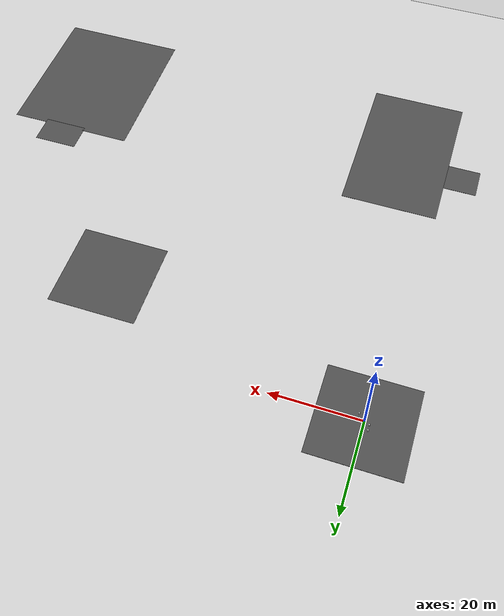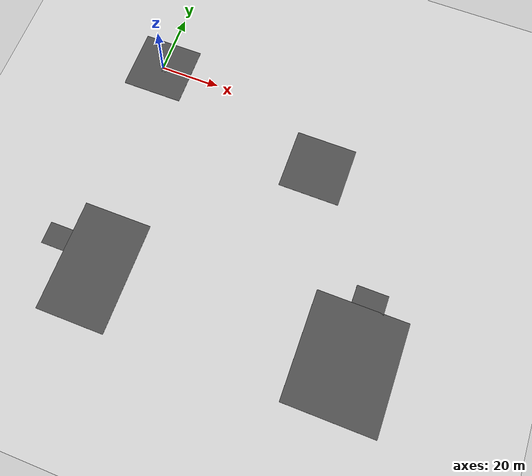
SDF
<sdf version="1.6">
 <world name="default">
  <light name="sun" type="directional">
   <pose>0 0 10 0 -0 0</pose>
   <diffuse>0.8 0.8 0.8 1</diffuse>
   <specular>0.2 0.2 0.2 1</specular>
   <attenuation>
    <range>1000</range>
    <constant>0.9</constant>
    <linear>0.01</linear>
    <quadratic>0.001</quadratic>
   </attenuation>
   <direction>-0.5 0.1 -0.9</direction>
  </light>
  <model name="ground_plane">
   <static>1</static>
   <link name="link">
    <collision name="collision">
     <geometry><plane><normal>0 0 1</normal><size>100 100</size></plane></geometry>
     <surface>
      <contact><collide_bitmask>65535</collide_bitmask></contact>
      <friction><ode><mu>100</mu><mu2>50</mu2></ode></friction>
     </surface>
    </collision>
    <visual name="visual">
     <cast_shadows>0</cast_shadows>
     <geometry><plane><normal>0 0 1</normal><size>100 100</size></plane></geometry>
     <material>
      <script><uri>file://media/materials/scripts/gazebo.material</uri><name>Gazebo/Grey</name></script>
     </material>
    </visual>
   </link>
  </model>
  <gravity>0 0 -9.8</gravity>
  <magnetic_field>6e-06 2.3e-05 -4.2e-05</magnetic_field>
  <atmosphere type="adiabatic"/>
  <physics name="default_physics" default="0" type="ode">
   <max_step_size>0.001</max_step_size>
   <real_time_factor>1</real_time_factor>
   <real_time_update_rate>1000</real_time_update_rate>
  </physics>
  <scene><ambient>0.4 0.4 0.4 1</ambient><background>0.7 0.7 0.7 1</background><shadows>1</shadows></scene>
  <audio><device>default</device></audio>
  <spherical_coordinates>
   <surface_model>EARTH_WGS84</surface_model>
   <latitude_deg>0</latitude_deg>
   <longitude_deg>0</longitude_deg>
   <elevation>0</elevation>
   <heading_deg>0</heading_deg>
  </spherical_coordinates>
  <model name="asphalt_plane">
   <static>1</static>
   <link name="link">
    <collision name="collision"><geometry><box><size>20 20 0.1</size></box></geometry></collision>
    <visual name="visual">
     <cast_shadows>0</cast_shadows>
     <geometry><box><size>20 20 0.1</size></box></geometry>
     <material>
      <script>
       <uri>model://asphalt_plane/materials/scripts</uri>
       <uri>model://asphalt_plane/materials/textures</uri>
       <name>vrc/asphalt</name>
      </script>
     </material>
    </visual>
   </link>
   <pose>0.009465 -0.064705 0 0 -0 0</pose>
  </model>
  <model name="obstacle">
   <pose>-0.506474 1.15359 0.049997 4e-06 -4e-06 0</pose>
   <link name="obstacle">
    <collision name="obstacle_1">
     <pose>-0.6 -0.6 0.25 0 -0 0</pose>
     <geometry><cylinder><radius>0.15</radius><length>0.5</length></cylinder></geometry>
    </collision>
    <visual name="obstacle_1">
     <pose>-0.6 -0.6 0.25 0 -0 0</pose>
     <geometry><cylinder><radius>0.15</radius><length>0.5</length></cylinder></geometry>
     <material>
      <script><uri>file://media/materials/scripts/gazebo.material</uri><name>Gazebo/White</name></script>
     </material>
    </visual>
    <collision name="obstacle_2">
     <pose>-0.6 0.6 0.25 0 -0 0</pose>
     <geometry><cylinder><radius>0.15</radius><length>0.5</length></cylinder></geometry>
    </collision>
    <visual name="obstacle_2">
     <pose>-0.6 0.6 0.25 0 -0 0</pose>
     <geometry><cylinder><radius>0.15</radius><length>0.5</length></cylinder></geometry>
     <material>
      <script><uri>file://media/materials/scripts/gazebo.material</uri><name>Gazebo/White</name></script>
     </material>
    </visual>
    <collision name="obstacle_3">
     <pose>0.6 -0.6 0.25 0 -0 0</pose>
     <geometry><cylinder><radius>0.15</radius><length>0.5</length></cylinder></geometry>
    </collision>
    <visual name="obstacle_3">
     <pose>0.6 -0.6 0.25 0 -0 0</pose>
     <geometry><cylinder><radius>0.15</radius><length>0.5</length></cylinder></geometry>
     <material>
      <script><uri>file://media/materials/scripts/gazebo.material</uri><name>Gazebo/White</name></script>
     </material>
    </visual>
    <collision name="obstacle_4">
     <pose>0.6 0.6 0.25 0 -0 0</pose>
     <geometry><cylinder><radius>0.15</radius><length>0.5</length></cylinder></geometry>
    </collision>
    <visual name="obstacle_4">
     <pose>0.6 0.6 0.25 0 -0 0</pose>
     <geometry><cylinder><radius>0.15</radius><length>0.5</length></cylinder></geometry>
     <material>
      <script><uri>file://media/materials/scripts/gazebo.material</uri><name>Gazebo/White</name></script>
     </material>
    </visual>
    <inertial>
     <inertia><ixx>1</ixx><ixy>0</ixy><ixz>0</ixz><iyy>1</iyy><iyz>0</iyz><izz>1</izz></inertia>
     <mass>1</mass>
    </inertial>
   </link>
  </model>
  <model name="obstacle_clone">
   <pose>0.71956 -0.690927 0.049997 -4e-06 5e-06 0</pose>
   <link name="obstacle_clone">
    <collision name="obstacle_01">
     <pose>-0.6 -0.6 0.25 0 -0 0</pose>
     <geometry><cylinder><radius>0.15</radius><length>0.5</length></cylinder></geometry>
    </collision>
    <visual name="obstacle_01">
     <pose>-0.6 -0.6 0.25 0 -0 0</pose>
     <geometry><cylinder><radius>0.15</radius><length>0.5</length></cylinder></geometry>
     <material>
      <script><uri>file://media/materials/scripts/gazebo.material</uri><name>Gazebo/White</name></script>
     </material>
    </visual>
    <collision name="obstacle_02">
     <pose>-0.6 0.6 0.25 0 -0 0</pose>
     <geometry><cylinder><radius>0.15</radius><length>0.5</length></cylinder></geometry>
    </collision>
    <visual name="obstacle_02">
     <pose>-0.6 0.6 0.25 0 -0 0</pose>
     <geometry><cylinder><radius>0.15</radius><length>0.5</length></cylinder></geometry>
     <material>
      <script><uri>file://media/materials/scripts/gazebo.material</uri><name>Gazebo/White</name></script>
     </material>
    </visual>
    <collision name="obstacle_03">
     <pose>0.6 -0.6 0.25 0 -0 0</pose>
     <geometry><cylinder><radius>0.15</radius><length>0.5</length></cylinder></geometry>
    </collision>
    <visual name="obstacle_03">
     <pose>0.6 -0.6 0.25 0 -0 0</pose>
     <geometry><cylinder><radius>0.15</radius><length>0.5</length></cylinder></geometry>
     <material>
      <script><uri>file://media/materials/scripts/gazebo.material</uri><name>Gazebo/White</name></script>
     </material>
    </visual>
    <collision name="obstacle_04">
     <pose>0.6 0.6 0.25 0 -0 0</pose>
     <geometry><cylinder><radius>0.15</radius><length>0.5</length></cylinder></geometry>
    </collision>
    <visual name="obstacle_04">
     <pose>0.6 0.6 0.25 0 -0 0</pose>
     <geometry><cylinder><radius>0.15</radius><length>0.5</length></cylinder></geometry>
     <material>
      <script><uri>file://media/materials/scripts/gazebo.material</uri><name>Gazebo/White</name></script>
     </material>
    </visual>
    <inertial>
     <inertia><ixx>1</ixx><ixy>0</ixy><ixz>0</ixz><iyy>1</iyy><iyz>0</iyz><izz>1</izz></inertia>
     <mass>1</mass>
    </inertial>
   </link>
  </model>
  <model name="asphalt_plane_138">
   <static>true</static>
   <pose>61.581
    -16.664
    0.0
    0
    0
    0</pose>
   <link name="link">
    <collision name="collision">
     <geometry><box><size>20
            20
            0.1</size></box></geometry>
    </collision>
    <visual name="visual">
     <geometry><box><size>20
            20
            0.05</size></box></geometry>
     <material>
      <script>
       <uri>model://asphalt_plane/materials/scripts</uri>
       <uri>model://asphalt_plane/materials/textures</uri>
       <name>vrc/asphalt</name>
      </script>
     </material>
    </visual>
   </link>
  </model>
  <model name="asphalt_plane_148">
   <static>true</static>
   <pose>88.62
    -72.49
    0.0
    0
    0
    0</pose>
   <link name="link">
    <collision name="collision">
     <geometry><box><size>29.378
            35.24
            0.1</size></box></geometry>
    </collision>
    <visual name="visual">
     <geometry><box><size>29.378
            35.24
            0.05</size></box></geometry>
     <material>
      <script>
       <uri>model://asphalt_plane/materials/scripts</uri>
       <uri>model://asphalt_plane/materials/textures</uri>
       <name>vrc/asphalt</name>
      </script>
     </material>
    </visual>
   </link>
  </model>
  <model name="asphalt_plane_149">
   <static>true</static>
   <pose>90.0
    -52.48
    0.0
    0
    0
    0</pose>
   <link name="link">
    <collision name="collision">
     <geometry><box><size>10.15
            6.61
            0.1</size></box></geometry>
    </collision>
    <visual name="visual">
     <geometry><box><size>10.15
            6.61
            0.05</size></box></geometry>
     <material>
      <script>
       <uri>model://asphalt_plane/materials/scripts</uri>
       <uri>model://asphalt_plane/materials/textures</uri>
       <name>vrc/asphalt</name>
      </script>
     </material>
    </visual>
   </link>
  </model>
  <model name="asphalt_plane_321">
   <static>true</static>
   <pose>7.4
    -72.69
    0.0
    0
    0
    0</pose>
   <link name="link">
    <collision name="collision">
     <geometry><box><size>22.248
            36.24
            0.1</size></box></geometry>
    </collision>
    <visual name="visual">
     <geometry><box><size>22.248
            36.24
            0.05</size></box></geometry>
     <material>
      <script>
       <uri>model://asphalt_plane/materials/scripts</uri>
       <uri>model://asphalt_plane/materials/textures</uri>
       <name>vrc/asphalt</name>
      </script>
     </material>
    </visual>
   </link>
  </model>
  <model name="asphalt_plane_322">
   <static>true</static>
   <pose>-7.51
    -67.99
    0.0
    0
    0
    0</pose>
   <link name="link">
    <collision name="collision">
     <geometry><box><size>7.63
            7.24
            0.1</size></box></geometry>
    </collision>
    <visual name="visual">
     <geometry><box><size>7.63
            7.24
            0.05</size></box></geometry>
     <material>
      <script>
       <uri>model://asphalt_plane/materials/scripts</uri>
       <uri>model://asphalt_plane/materials/textures</uri>
       <name>vrc/asphalt</name>
      </script>
     </material>
    </visual>
   </link>
  </model>
 </world>
</sdf>
